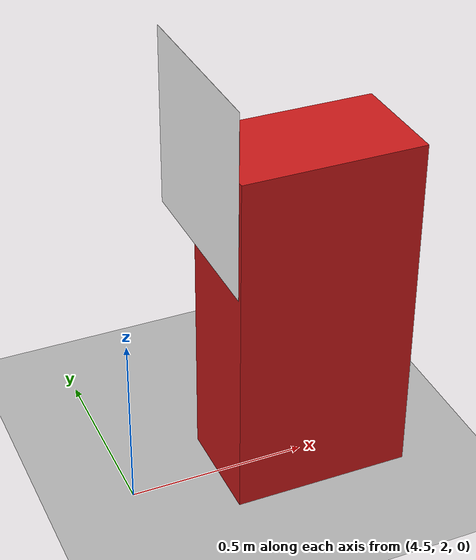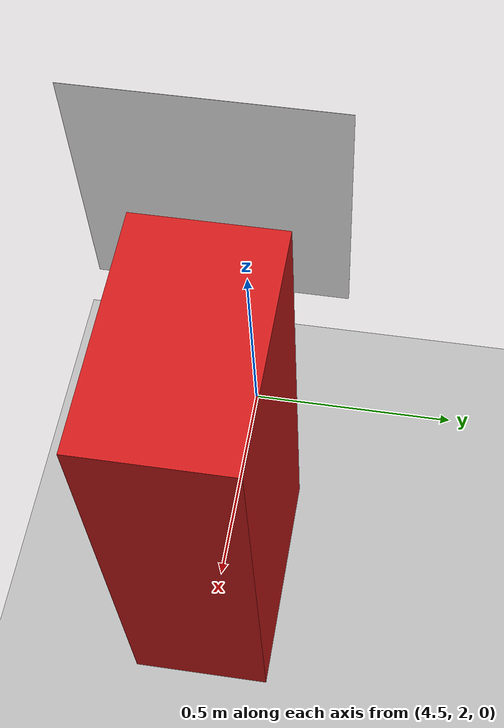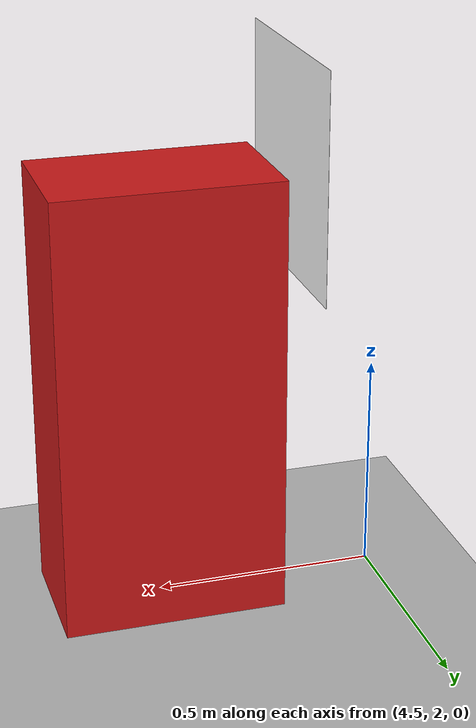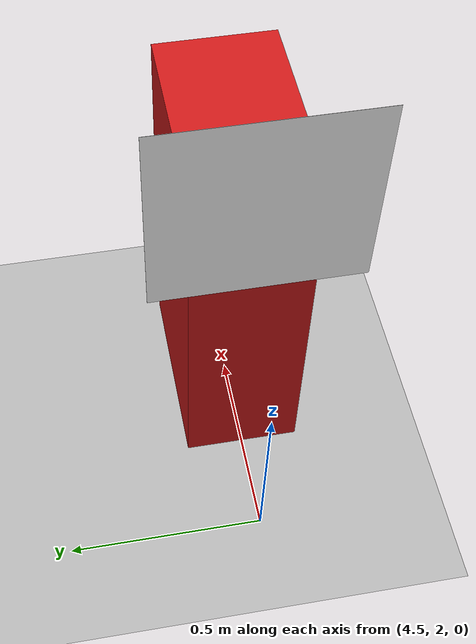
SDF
<?xml version="1.0" encoding="UTF-8"?>
<sdf version="1.9">
<world name="aruco">
<!-- Physics settings -->
<physics type="ode">
<max_step_size>0.004</max_step_size>
<real_time_factor>1.0</real_time_factor>
<real_time_update_rate>250</real_time_update_rate>
</physics>

    <!-- Plugins for simulation -->
<plugin name="gz::sim::systems::Physics" filename="gz-sim-physics-system"/>
<plugin name="gz::sim::systems::UserCommands" filename="gz-sim-user-commands-system"/>
<plugin name="gz::sim::systems::SceneBroadcaster" filename="gz-sim-scene-broadcaster-system"/>
<plugin name="gz::sim::systems::Contact" filename="gz-sim-contact-system"/>
<plugin name="gz::sim::systems::Imu" filename="gz-sim-imu-system"/>
<plugin name="gz::sim::systems::AirPressure" filename="gz-sim-air-pressure-system"/>
<plugin name="gz::sim::systems::ApplyLinkWrench" filename="gz-sim-apply-link-wrench-system"/>
<plugin name="gz::sim::systems::NavSat" filename="gz-sim-navsat-system"/>
<plugin name="gz::sim::systems::Sensors" filename="gz-sim-sensors-system">
<render_engine>ogre2</render_engine>
</plugin>

    <!-- GUI settings -->
<gui fullscreen="false">
<!-- Plugin configuration omitted for brevity -->
</gui>

    <!-- Environment settings -->
<gravity>0 0 -9.8</gravity>
<magnetic_field>6e-06 2.3e-05 -4.2e-05</magnetic_field>
<atmosphere type="adiabatic"/>

    <!-- Scene and lighting settings -->
<scene>
<grid>false</grid>
<ambient>0.7 0.7 0.7 1</ambient>
<background>0.8 0.8 0.8 1</background>
<shadows>true</shadows>
</scene>

    <!-- Sunlight -->
<light name="sun" type="directional">
<pose>0 0 10 0 -0 0</pose>
<cast_shadows>true</cast_shadows>
<intensity>1.5</intensity>
<direction>0.1 0.5 -1</direction>
</light>

    <!-- Ground plane -->
<model name="ground_plane">
<static>true</static>
<link name="link">
<collision name="collision">
<geometry>
<plane>
<normal>0 0 1</normal>
<size>100 100</size>
</plane>
</geometry>
</collision>
<visual name="visual">
<geometry>
<plane>
<normal>0 0 1</normal>
<size>100 100</size>
</plane>
</geometry>
<material>
<ambient>0.7 0.7 0.7 1</ambient>
<diffuse>0.7 0.7 0.7 1</diffuse>
</material>
</visual>
</link>
</model>

    <!-- Parallelepipedo spostato più lontano -->
<model name="parallelepiped_with_marker">
<pose>5 2 0.5 0 0 0</pose> <!-- Nuova posizione più distante -->
<link name="link">
<visual name="parallelepipedo_visual">
<geometry>
<box>
<size>0.5 0.3 1.0</size>
</box>
</geometry>
<material>
<ambient>0.8 0.1 0.1 1</ambient>
<diffuse>0.8 0.1 0.1 1</diffuse>
<specular>0.5 0.5 0.5 1</specular>
</material>
</visual>
<collision name="parallelepipedo_collision">
<geometry>
<box>
<size>0.5 0.3 1.0</size>
</box>
</geometry>
</collision>
</link>
</model>

    <!-- ArUco Marker spostato sopra il parallelepipedo nella nuova posizione -->
<model name="arucotag">
<pose>4.75 2 1.0 0 -1.57 0</pose> <!-- Spostato insieme al parallelepipedo -->
<include>
<uri>model://arucotag</uri>
</include>
</model>

    <!-- Spherical coordinates for GPS -->
<spherical_coordinates>
<surface_model>EARTH_WGS84</surface_model>
<latitude_deg>47.397971057728974</latitude_deg>
<longitude_deg>8.546163739800146</longitude_deg>
<elevation>0</elevation>
</spherical_coordinates>
</world>
</sdf>

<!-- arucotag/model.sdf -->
<sdf version='1.9'>
  <model name='arucotag'>
    <static>true</static>
    <pose>0 0 0.05 0 0 0</pose>  <!-- Modificato da 0.001 a 0.05 -->
    <link name='base'>
      <visual name='base_visual'>
        <geometry>
          <plane>
            <normal>0 0 1</normal>
            <size>0.5 0.5</size>
          </plane>
        </geometry>
        <material>
          <diffuse>1 1 1 1</diffuse>
          <specular>0.4 0.4 0.4 1</specular>
          <pbr>
            <metal>
              <albedo_map>model://arucotag/arucotag.png</albedo_map>
            </metal>
          </pbr>
        </material>
      </visual>
    </link>
  </model>
</sdf>
